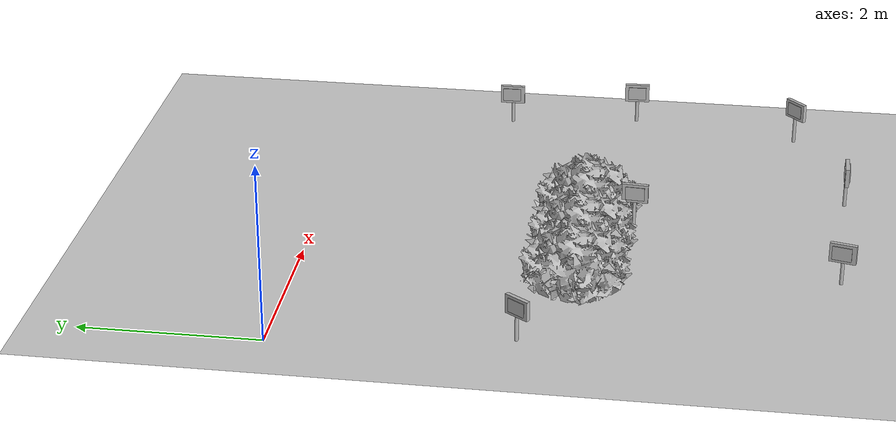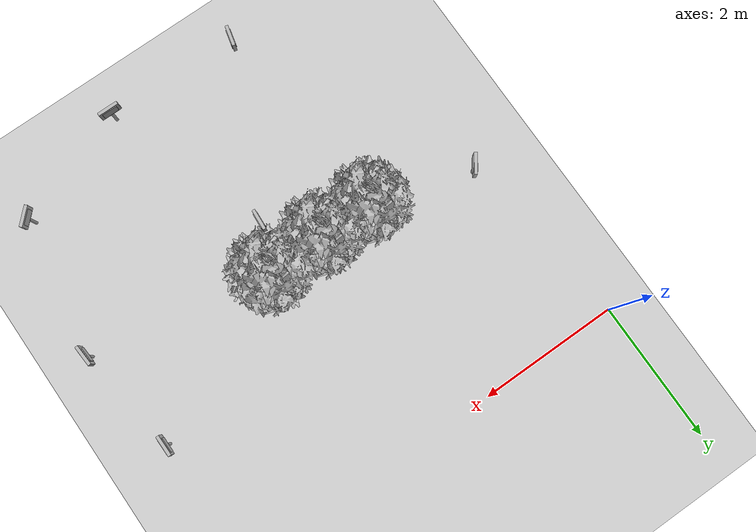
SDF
<sdf version="1.7">
 <world name="default">
  <model name="ground_plane">
   <static>1</static>
   <link name="link">
    <collision name="collision">
     <geometry><plane><normal>0 0 1</normal><size>100 100</size></plane></geometry>
     <surface><friction><ode><mu>100</mu><mu2>50</mu2></ode></friction></surface>
    </collision>
    <visual name="visual">
     <cast_shadows>0</cast_shadows>
     <geometry><plane><normal>0 0 1</normal><size>100 100</size></plane></geometry>
     <material>
      <script><uri>file://media/materials/scripts/gazebo.material</uri><name>Gazebo/Grey</name></script>
     </material>
    </visual>
   </link>
  </model>
  <model name="abbfre_7">
   <link name="link_0">
    <inertial>
     <mass>1</mass>
     <inertia>
      <ixx>0.166667</ixx>
      <ixy>0</ixy>
      <ixz>0</ixz>
      <iyy>0.166667</iyy>
      <iyz>0</iyz>
      <izz>0.166667</izz>
     </inertia>
    </inertial>
    <pose>0 0 -0 1.60917 -0 0</pose>
    <visual name="visual">
     <geometry><mesh><uri>model://abbfre/meshes/arbufres.obj</uri><scale>1 1 1</scale></mesh></geometry>
    </visual>
    <collision name="collision">
     <geometry><mesh><uri>model://abbfre/meshes/arbufres.obj</uri><scale>1 1 1</scale></mesh></geometry>
     <surface>
      <friction>
       <ode><mu>1</mu><mu2>1</mu2><fdir1>0 0 0</fdir1><slip1>0</slip1><slip2>0</slip2></ode>
       <torsional>
        <coefficient>1</coefficient>
        <patch_radius>0</patch_radius>
        <surface_radius>0</surface_radius>
        <use_patch_radius>1</use_patch_radius>
        <ode><slip>0</slip></ode>
       </torsional>
      </friction>
      <bounce><restitution_coefficient>0</restitution_coefficient><threshold>1e+06</threshold></bounce>
      <contact>
       <collide_without_contact>0</collide_without_contact>
       <collide_without_contact_bitmask>1</collide_without_contact_bitmask>
       <collide_bitmask>1</collide_bitmask>
       <ode>
        <soft_cfm>0</soft_cfm>
        <soft_erp>0.2</soft_erp>
        <kp>1e+13</kp>
        <kd>1</kd>
        <max_vel>0.01</max_vel>
        <min_depth>0</min_depth>
       </ode>
       <bullet>
        <split_impulse>1</split_impulse>
        <split_impulse_penetration_threshold>-0.01</split_impulse_penetration_threshold>
        <soft_cfm>0</soft_cfm>
        <soft_erp>0.2</soft_erp>
        <kp>1e+13</kp>
        <kd>1</kd>
       </bullet>
      </contact>
     </surface>
    </collision>
   </link>
   <static>1</static>
   <pose>2.60583 -2.92562 0 0 -0 0</pose>
  </model>
  <model name="letrero_riego_3">
   <link name="link_0">
    <inertial>
     <mass>0.0543151</mass>
     <inertia>
      <ixx>4.90351e-06</ixx>
      <ixy>0</ixy>
      <ixz>0</ixz>
      <iyy>4.90351e-06</iyy>
      <iyz>0</iyz>
      <izz>1.12837e-07</izz>
     </inertia>
    </inertial>
    <pose>0.002515 0.005109 0.153562 0 -0 0</pose>
    <visual name="visual">
     <geometry><cylinder><radius>0.0203836</radius><length>0.327243</length></cylinder></geometry>
     <material>
      <lighting>1</lighting>
      <script>
       <uri>model://letrero_riego/madera/scripts</uri>
       <uri>model://letrero_riego/madera/textures</uri>
       <name>textur/madera</name>
      </script>
      <shader type="pixel"/>
      <emissive>0 0 0 1</emissive>
     </material>
    </visual>
    <collision name="collision">
     <geometry><cylinder><radius>0.020384</radius><length>0.327243</length></cylinder></geometry>
     <surface>
      <friction>
       <ode><mu>1</mu><mu2>1</mu2><fdir1>0 0 0</fdir1><slip1>0</slip1><slip2>0</slip2></ode>
       <torsional>
        <coefficient>1</coefficient>
        <patch_radius>0</patch_radius>
        <surface_radius>0</surface_radius>
        <use_patch_radius>1</use_patch_radius>
        <ode><slip>0</slip></ode>
       </torsional>
      </friction>
      <bounce><restitution_coefficient>0</restitution_coefficient><threshold>1e+06</threshold></bounce>
      <contact>
       <collide_without_contact>0</collide_without_contact>
       <collide_without_contact_bitmask>1</collide_without_contact_bitmask>
       <collide_bitmask>1</collide_bitmask>
       <ode>
        <soft_cfm>0</soft_cfm>
        <soft_erp>0.2</soft_erp>
        <kp>1e+13</kp>
        <kd>1</kd>
        <max_vel>0.01</max_vel>
        <min_depth>0</min_depth>
       </ode>
       <bullet>
        <split_impulse>1</split_impulse>
        <split_impulse_penetration_threshold>-0.01</split_impulse_penetration_threshold>
        <soft_cfm>0</soft_cfm>
        <soft_erp>0.2</soft_erp>
        <kp>1e+13</kp>
        <kd>1</kd>
       </bullet>
      </contact>
     </surface>
    </collision>
   </link>
   <link name="link_1">
    <inertial>
     <mass>0.00299633</mass>
     <inertia>
      <ixx>1.27855e-05</ixx>
      <ixy>0</ixy>
      <ixz>0</ixz>
      <iyy>3.42923e-05</iyy>
      <iyz>0</iyz>
      <izz>2.25402e-05</izz>
     </inertia>
    </inertial>
    <pose>-0.001542 0.002452 0.422031 0 -0 0</pose>
    <visual name="visual">
     <geometry><box><size>0.296988 0.04549 0.221665</size></box></geometry>
     <material>
      <lighting>1</lighting>
      <script>
       <uri>model://letrero_riego/madera/scripts</uri>
       <uri>model://letrero_riego/madera/textures</uri>
       <name>textur/madera</name>
      </script>
      <shader type="pixel"/>
      <emissive>0 0 0 1</emissive>
     </material>
    </visual>
    <collision name="collision">
     <geometry><box><size>0.296988 0.04549 0.221665</size></box></geometry>
     <surface>
      <friction>
       <ode><mu>1</mu><mu2>1</mu2><fdir1>0 0 0</fdir1><slip1>0</slip1><slip2>0</slip2></ode>
       <torsional>
        <coefficient>1</coefficient>
        <patch_radius>0</patch_radius>
        <surface_radius>0</surface_radius>
        <use_patch_radius>1</use_patch_radius>
        <ode><slip>0</slip></ode>
       </torsional>
      </friction>
      <bounce><restitution_coefficient>0</restitution_coefficient><threshold>1e+06</threshold></bounce>
      <contact>
       <collide_without_contact>0</collide_without_contact>
       <collide_without_contact_bitmask>1</collide_without_contact_bitmask>
       <collide_bitmask>1</collide_bitmask>
       <ode>
        <soft_cfm>0</soft_cfm>
        <soft_erp>0.2</soft_erp>
        <kp>1e+13</kp>
        <kd>1</kd>
        <max_vel>0.01</max_vel>
        <min_depth>0</min_depth>
       </ode>
       <bullet>
        <split_impulse>1</split_impulse>
        <split_impulse_penetration_threshold>-0.01</split_impulse_penetration_threshold>
        <soft_cfm>0</soft_cfm>
        <soft_erp>0.2</soft_erp>
        <kp>1e+13</kp>
        <kd>1</kd>
       </bullet>
      </contact>
     </surface>
    </collision>
   </link>
   <link name="link_2">
    <inertial>
     <mass>0.00173577</mass>
     <inertia>
      <ixx>4.23206e-06</ixx>
      <ixy>0</ixy>
      <ixz>0</ixz>
      <iyy>1.03921e-05</iyy>
      <iyz>0</iyz>
      <izz>7.37287e-06</izz>
     </inertia>
    </inertial>
    <pose>-0.010225 0.002657 0.421501 0 -0 0</pose>
    <visual name="visual">
     <geometry><box><size>0.216284 0.064749 0.15832</size></box></geometry>
     <material>
      <lighting>1</lighting>
      <script>
       <uri>model://letrero_riego/materials/scripts</uri>
       <uri>model://letrero_riego/materials/textures</uri>
       <name>textur/riego</name>
      </script>
      <shader type="pixel"/>
      <emissive>0 0 0 1</emissive>
     </material>
    </visual>
    <collision name="collision">
     <geometry><box><size>0.216284 0.064749 0.15832</size></box></geometry>
     <surface>
      <friction>
       <ode><mu>1</mu><mu2>1</mu2><fdir1>0 0 0</fdir1><slip1>0</slip1><slip2>0</slip2></ode>
       <torsional>
        <coefficient>1</coefficient>
        <patch_radius>0</patch_radius>
        <surface_radius>0</surface_radius>
        <use_patch_radius>1</use_patch_radius>
        <ode><slip>0</slip></ode>
       </torsional>
      </friction>
      <bounce><restitution_coefficient>0</restitution_coefficient><threshold>1e+06</threshold></bounce>
      <contact>
       <collide_without_contact>0</collide_without_contact>
       <collide_without_contact_bitmask>1</collide_without_contact_bitmask>
       <collide_bitmask>1</collide_bitmask>
       <ode>
        <soft_cfm>0</soft_cfm>
        <soft_erp>0.2</soft_erp>
        <kp>1e+13</kp>
        <kd>1</kd>
        <max_vel>0.01</max_vel>
        <min_depth>0</min_depth>
       </ode>
       <bullet>
        <split_impulse>1</split_impulse>
        <split_impulse_penetration_threshold>-0.01</split_impulse_penetration_threshold>
        <soft_cfm>0</soft_cfm>
        <soft_erp>0.2</soft_erp>
        <kp>1e+13</kp>
        <kd>1</kd>
       </bullet>
      </contact>
     </surface>
    </collision>
   </link>
   <joint name="link_0_JOINT_1" type="fixed">
    <parent>link_0</parent>
    <child>link_1</child>
    <physics>
     <ode><limit><cfm>0</cfm><erp>0.2</erp></limit><suspension><cfm>0</cfm><erp>0.2</erp></suspension></ode>
    </physics>
   </joint>
   <joint name="link_0_JOINT_2" type="fixed">
    <parent>link_0</parent>
    <child>link_2</child>
    <physics>
     <ode><limit><cfm>0</cfm><erp>0.2</erp></limit><suspension><cfm>0</cfm><erp>0.2</erp></suspension></ode>
    </physics>
   </joint>
   <static>1</static>
   <pose>5.76133 -1.89279 -0.058362 0 0 -1.56852</pose>
  </model>
  <model name="letrero_fresa_2">
   <link name="link_0">
    <inertial>
     <mass>0.00543151</mass>
     <inertia>
      <ixx>4.90351e-06</ixx>
      <ixy>0</ixy>
      <ixz>0</ixz>
      <iyy>4.90351e-06</iyy>
      <iyz>0</iyz>
      <izz>1.12837e-07</izz>
     </inertia>
    </inertial>
    <pose>0.002372 -0.000902 -0.178803 0 -0 0</pose>
    <visual name="visual">
     <geometry><cylinder><radius>0.0203836</radius><length>0.327243</length></cylinder></geometry>
     <material>
      <lighting>1</lighting>
      <script>
       <uri>model://letrero_fresa/madera/scripts</uri>
       <uri>model://letrero_fresa/madera/textures</uri>
       <name>textur/madera</name>
      </script>
      <shader type="pixel"/>
      <emissive>0 0 0 1</emissive>
     </material>
    </visual>
    <collision name="collision">
     <geometry><cylinder><radius>0.020384</radius><length>0.327243</length></cylinder></geometry>
     <surface>
      <friction>
       <ode><mu>1</mu><mu2>1</mu2><fdir1>0 0 0</fdir1><slip1>0</slip1><slip2>0</slip2></ode>
       <torsional>
        <coefficient>1</coefficient>
        <patch_radius>0</patch_radius>
        <surface_radius>0</surface_radius>
        <use_patch_radius>1</use_patch_radius>
        <ode><slip>0</slip></ode>
       </torsional>
      </friction>
      <bounce><restitution_coefficient>0</restitution_coefficient><threshold>1e+06</threshold></bounce>
      <contact>
       <collide_without_contact>0</collide_without_contact>
       <collide_without_contact_bitmask>1</collide_without_contact_bitmask>
       <collide_bitmask>1</collide_bitmask>
       <ode>
        <soft_cfm>0</soft_cfm>
        <soft_erp>0.2</soft_erp>
        <kp>1e+13</kp>
        <kd>1</kd>
        <max_vel>0.01</max_vel>
        <min_depth>0</min_depth>
       </ode>
       <bullet>
        <split_impulse>1</split_impulse>
        <split_impulse_penetration_threshold>-0.01</split_impulse_penetration_threshold>
        <soft_cfm>0</soft_cfm>
        <soft_erp>0.2</soft_erp>
        <kp>1e+13</kp>
        <kd>1</kd>
       </bullet>
      </contact>
     </surface>
    </collision>
   </link>
   <link name="link_1">
    <inertial>
     <mass>0.00299633</mass>
     <inertia>
      <ixx>1.27855e-05</ixx>
      <ixy>0</ixy>
      <ixz>0</ixz>
      <iyy>3.42923e-05</iyy>
      <iyz>0</iyz>
      <izz>2.25402e-05</izz>
     </inertia>
    </inertial>
    <pose>-0.001685 -0.003559 0.089666 0 -0 0</pose>
    <visual name="visual">
     <geometry><box><size>0.296988 0.04549 0.221665</size></box></geometry>
     <material>
      <lighting>1</lighting>
      <script>
       <uri>model://letrero_fresa/madera/scripts</uri>
       <uri>model://letrero_fresa/madera/textures</uri>
       <name>textur/madera</name>
      </script>
      <shader type="pixel"/>
      <emissive>0 0 0 1</emissive>
     </material>
    </visual>
    <collision name="collision">
     <geometry><box><size>0.296988 0.04549 0.221665</size></box></geometry>
     <surface>
      <friction>
       <ode><mu>1</mu><mu2>1</mu2><fdir1>0 0 0</fdir1><slip1>0</slip1><slip2>0</slip2></ode>
       <torsional>
        <coefficient>1</coefficient>
        <patch_radius>0</patch_radius>
        <surface_radius>0</surface_radius>
        <use_patch_radius>1</use_patch_radius>
        <ode><slip>0</slip></ode>
       </torsional>
      </friction>
      <bounce><restitution_coefficient>0</restitution_coefficient><threshold>1e+06</threshold></bounce>
      <contact>
       <collide_without_contact>0</collide_without_contact>
       <collide_without_contact_bitmask>1</collide_without_contact_bitmask>
       <collide_bitmask>1</collide_bitmask>
       <ode>
        <soft_cfm>0</soft_cfm>
        <soft_erp>0.2</soft_erp>
        <kp>1e+13</kp>
        <kd>1</kd>
        <max_vel>0.01</max_vel>
        <min_depth>0</min_depth>
       </ode>
       <bullet>
        <split_impulse>1</split_impulse>
        <split_impulse_penetration_threshold>-0.01</split_impulse_penetration_threshold>
        <soft_cfm>0</soft_cfm>
        <soft_erp>0.2</soft_erp>
        <kp>1e+13</kp>
        <kd>1</kd>
       </bullet>
      </contact>
     </surface>
    </collision>
   </link>
   <link name="link_2">
    <inertial>
     <mass>0.00219695</mass>
     <inertia>
      <ixx>5.34209e-06</ixx>
      <ixy>0</ixy>
      <ixz>0</ixz>
      <iyy>1.31531e-05</iyy>
      <iyz>0</iyz>
      <izz>9.31738e-06</izz>
     </inertia>
    </inertial>
    <pose>-0.001275 -0.005928 0.089136 0 -0 0</pose>
    <visual name="visual">
     <geometry><box><size>0.216284 0.06414 0.15832</size></box></geometry>
     <material>
      <lighting>1</lighting>
      <script>
       <uri>model://letrero_fresa/materials/scripts</uri>
       <uri>model://letrero_fresa/materials/textures</uri>
       <name>textur/difre</name>
      </script>
      <shader type="pixel"/>
      <emissive>0 0 0 1</emissive>
     </material>
    </visual>
    <collision name="collision">
     <geometry><box><size>0.216284 0.06414 0.15832</size></box></geometry>
     <surface>
      <friction>
       <ode><mu>1</mu><mu2>1</mu2><fdir1>0 0 0</fdir1><slip1>0</slip1><slip2>0</slip2></ode>
       <torsional>
        <coefficient>1</coefficient>
        <patch_radius>0</patch_radius>
        <surface_radius>0</surface_radius>
        <use_patch_radius>1</use_patch_radius>
        <ode><slip>0</slip></ode>
       </torsional>
      </friction>
      <bounce><restitution_coefficient>0</restitution_coefficient><threshold>1e+06</threshold></bounce>
      <contact>
       <collide_without_contact>0</collide_without_contact>
       <collide_without_contact_bitmask>1</collide_without_contact_bitmask>
       <collide_bitmask>1</collide_bitmask>
       <ode>
        <soft_cfm>0</soft_cfm>
        <soft_erp>0.2</soft_erp>
        <kp>1e+13</kp>
        <kd>1</kd>
        <max_vel>0.01</max_vel>
        <min_depth>0</min_depth>
       </ode>
       <bullet>
        <split_impulse>1</split_impulse>
        <split_impulse_penetration_threshold>-0.01</split_impulse_penetration_threshold>
        <soft_cfm>0</soft_cfm>
        <soft_erp>0.2</soft_erp>
        <kp>1e+13</kp>
        <kd>1</kd>
       </bullet>
      </contact>
     </surface>
    </collision>
   </link>
   <joint name="link_0_JOINT_1" type="fixed">
    <parent>link_0</parent>
    <child>link_1</child>
    <physics>
     <ode><limit><cfm>0</cfm><erp>0.2</erp></limit><suspension><cfm>0</cfm><erp>0.2</erp></suspension></ode>
    </physics>
   </joint>
   <joint name="link_0_JOINT_2" type="fixed">
    <parent>link_0</parent>
    <child>link_2</child>
    <physics>
     <ode><limit><cfm>0</cfm><erp>0.2</erp></limit><suspension><cfm>0</cfm><erp>0.2</erp></suspension></ode>
    </physics>
   </joint>
   <static>1</static>
   <pose>0.385893 -2.58053 0.298494 0 -0 0.962448</pose>
  </model>
  <model name="letrero_fresa_8">
   <link name="link_0">
    <inertial>
     <mass>0.00543151</mass>
     <inertia>
      <ixx>4.90351e-06</ixx>
      <ixy>0</ixy>
      <ixz>0</ixz>
      <iyy>4.90351e-06</iyy>
      <iyz>0</iyz>
      <izz>1.12837e-07</izz>
     </inertia>
    </inertial>
    <pose>0.002372 -0.000902 -0.178803 0 -0 0</pose>
    <visual name="visual">
     <geometry><cylinder><radius>0.0203836</radius><length>0.327243</length></cylinder></geometry>
     <material>
      <lighting>1</lighting>
      <script>
       <uri>model://letrero_fresa/madera/scripts</uri>
       <uri>model://letrero_fresa/madera/textures</uri>
       <name>textur/madera</name>
      </script>
      <shader type="pixel"/>
      <emissive>0 0 0 1</emissive>
     </material>
    </visual>
    <collision name="collision">
     <geometry><cylinder><radius>0.020384</radius><length>0.327243</length></cylinder></geometry>
     <surface>
      <friction>
       <ode><mu>1</mu><mu2>1</mu2><fdir1>0 0 0</fdir1><slip1>0</slip1><slip2>0</slip2></ode>
       <torsional>
        <coefficient>1</coefficient>
        <patch_radius>0</patch_radius>
        <surface_radius>0</surface_radius>
        <use_patch_radius>1</use_patch_radius>
        <ode><slip>0</slip></ode>
       </torsional>
      </friction>
      <bounce><restitution_coefficient>0</restitution_coefficient><threshold>1e+06</threshold></bounce>
      <contact>
       <collide_without_contact>0</collide_without_contact>
       <collide_without_contact_bitmask>1</collide_without_contact_bitmask>
       <collide_bitmask>1</collide_bitmask>
       <ode>
        <soft_cfm>0</soft_cfm>
        <soft_erp>0.2</soft_erp>
        <kp>1e+13</kp>
        <kd>1</kd>
        <max_vel>0.01</max_vel>
        <min_depth>0</min_depth>
       </ode>
       <bullet>
        <split_impulse>1</split_impulse>
        <split_impulse_penetration_threshold>-0.01</split_impulse_penetration_threshold>
        <soft_cfm>0</soft_cfm>
        <soft_erp>0.2</soft_erp>
        <kp>1e+13</kp>
        <kd>1</kd>
       </bullet>
      </contact>
     </surface>
    </collision>
   </link>
   <link name="link_1">
    <inertial>
     <mass>0.00299633</mass>
     <inertia>
      <ixx>1.27855e-05</ixx>
      <ixy>0</ixy>
      <ixz>0</ixz>
      <iyy>3.42923e-05</iyy>
      <iyz>0</iyz>
      <izz>2.25402e-05</izz>
     </inertia>
    </inertial>
    <pose>-0.001685 -0.003559 0.089666 0 -0 0</pose>
    <visual name="visual">
     <geometry><box><size>0.296988 0.04549 0.221665</size></box></geometry>
     <material>
      <lighting>1</lighting>
      <script>
       <uri>model://letrero_fresa/madera/scripts</uri>
       <uri>model://letrero_fresa/madera/textures</uri>
       <name>textur/madera</name>
      </script>
      <shader type="pixel"/>
      <emissive>0 0 0 1</emissive>
     </material>
    </visual>
    <collision name="collision">
     <geometry><box><size>0.296988 0.04549 0.221665</size></box></geometry>
     <surface>
      <friction>
       <ode><mu>1</mu><mu2>1</mu2><fdir1>0 0 0</fdir1><slip1>0</slip1><slip2>0</slip2></ode>
       <torsional>
        <coefficient>1</coefficient>
        <patch_radius>0</patch_radius>
        <surface_radius>0</surface_radius>
        <use_patch_radius>1</use_patch_radius>
        <ode><slip>0</slip></ode>
       </torsional>
      </friction>
      <bounce><restitution_coefficient>0</restitution_coefficient><threshold>1e+06</threshold></bounce>
      <contact>
       <collide_without_contact>0</collide_without_contact>
       <collide_without_contact_bitmask>1</collide_without_contact_bitmask>
       <collide_bitmask>1</collide_bitmask>
       <ode>
        <soft_cfm>0</soft_cfm>
        <soft_erp>0.2</soft_erp>
        <kp>1e+13</kp>
        <kd>1</kd>
        <max_vel>0.01</max_vel>
        <min_depth>0</min_depth>
       </ode>
       <bullet>
        <split_impulse>1</split_impulse>
        <split_impulse_penetration_threshold>-0.01</split_impulse_penetration_threshold>
        <soft_cfm>0</soft_cfm>
        <soft_erp>0.2</soft_erp>
        <kp>1e+13</kp>
        <kd>1</kd>
       </bullet>
      </contact>
     </surface>
    </collision>
   </link>
   <link name="link_2">
    <inertial>
     <mass>0.00219695</mass>
     <inertia>
      <ixx>5.34209e-06</ixx>
      <ixy>0</ixy>
      <ixz>0</ixz>
      <iyy>1.31531e-05</iyy>
      <iyz>0</iyz>
      <izz>9.31738e-06</izz>
     </inertia>
    </inertial>
    <pose>-0.001275 -0.005928 0.089136 0 -0 0</pose>
    <visual name="visual">
     <geometry><box><size>0.216284 0.06414 0.15832</size></box></geometry>
     <material>
      <lighting>1</lighting>
      <script>
       <uri>model://letrero_fresa/materials/scripts</uri>
       <uri>model://letrero_fresa/materials/textures</uri>
       <name>textur/difre</name>
      </script>
      <shader type="pixel"/>
      <emissive>0 0 0 1</emissive>
     </material>
    </visual>
    <collision name="collision">
     <geometry><box><size>0.216284 0.06414 0.15832</size></box></geometry>
     <surface>
      <friction>
       <ode><mu>1</mu><mu2>1</mu2><fdir1>0 0 0</fdir1><slip1>0</slip1><slip2>0</slip2></ode>
       <torsional>
        <coefficient>1</coefficient>
        <patch_radius>0</patch_radius>
        <surface_radius>0</surface_radius>
        <use_patch_radius>1</use_patch_radius>
        <ode><slip>0</slip></ode>
       </torsional>
      </friction>
      <bounce><restitution_coefficient>0</restitution_coefficient><threshold>1e+06</threshold></bounce>
      <contact>
       <collide_without_contact>0</collide_without_contact>
       <collide_without_contact_bitmask>1</collide_without_contact_bitmask>
       <collide_bitmask>1</collide_bitmask>
       <ode>
        <soft_cfm>0</soft_cfm>
        <soft_erp>0.2</soft_erp>
        <kp>1e+13</kp>
        <kd>1</kd>
        <max_vel>0.01</max_vel>
        <min_depth>0</min_depth>
       </ode>
       <bullet>
        <split_impulse>1</split_impulse>
        <split_impulse_penetration_threshold>-0.01</split_impulse_penetration_threshold>
        <soft_cfm>0</soft_cfm>
        <soft_erp>0.2</soft_erp>
        <kp>1e+13</kp>
        <kd>1</kd>
       </bullet>
      </contact>
     </surface>
    </collision>
   </link>
   <joint name="link_0_JOINT_1" type="fixed">
    <parent>link_0</parent>
    <child>link_1</child>
    <physics>
     <ode><limit><cfm>0</cfm><erp>0.2</erp></limit><suspension><cfm>0</cfm><erp>0.2</erp></suspension></ode>
    </physics>
   </joint>
   <joint name="link_0_JOINT_2" type="fixed">
    <parent>link_0</parent>
    <child>link_2</child>
    <physics>
     <ode><limit><cfm>0</cfm><erp>0.2</erp></limit><suspension><cfm>0</cfm><erp>0.2</erp></suspension></ode>
    </physics>
   </joint>
   <static>1</static>
   <pose>3.14817 -3.5974 0.304094 0 -0 1.50107</pose>
  </model>
  <model name="letrero_riego_10">
   <link name="link_0">
    <inertial>
     <mass>0.0543151</mass>
     <inertia>
      <ixx>4.90351e-06</ixx>
      <ixy>0</ixy>
      <ixz>0</ixz>
      <iyy>4.90351e-06</iyy>
      <iyz>0</iyz>
      <izz>1.12837e-07</izz>
     </inertia>
    </inertial>
    <pose>0.002515 0.005109 0.153562 0 -0 0</pose>
    <visual name="visual">
     <geometry><cylinder><radius>0.0203836</radius><length>0.327243</length></cylinder></geometry>
     <material>
      <lighting>1</lighting>
      <script>
       <uri>model://letrero_riego/madera/scripts</uri>
       <uri>model://letrero_riego/madera/textures</uri>
       <name>textur/madera</name>
      </script>
      <shader type="pixel"/>
      <emissive>0 0 0 1</emissive>
     </material>
    </visual>
    <collision name="collision">
     <geometry><cylinder><radius>0.020384</radius><length>0.327243</length></cylinder></geometry>
     <surface>
      <friction>
       <ode><mu>1</mu><mu2>1</mu2><fdir1>0 0 0</fdir1><slip1>0</slip1><slip2>0</slip2></ode>
       <torsional>
        <coefficient>1</coefficient>
        <patch_radius>0</patch_radius>
        <surface_radius>0</surface_radius>
        <use_patch_radius>1</use_patch_radius>
        <ode><slip>0</slip></ode>
       </torsional>
      </friction>
      <bounce><restitution_coefficient>0</restitution_coefficient><threshold>1e+06</threshold></bounce>
      <contact>
       <collide_without_contact>0</collide_without_contact>
       <collide_without_contact_bitmask>1</collide_without_contact_bitmask>
       <collide_bitmask>1</collide_bitmask>
       <ode>
        <soft_cfm>0</soft_cfm>
        <soft_erp>0.2</soft_erp>
        <kp>1e+13</kp>
        <kd>1</kd>
        <max_vel>0.01</max_vel>
        <min_depth>0</min_depth>
       </ode>
       <bullet>
        <split_impulse>1</split_impulse>
        <split_impulse_penetration_threshold>-0.01</split_impulse_penetration_threshold>
        <soft_cfm>0</soft_cfm>
        <soft_erp>0.2</soft_erp>
        <kp>1e+13</kp>
        <kd>1</kd>
       </bullet>
      </contact>
     </surface>
    </collision>
   </link>
   <link name="link_1">
    <inertial>
     <mass>0.00299633</mass>
     <inertia>
      <ixx>1.27855e-05</ixx>
      <ixy>0</ixy>
      <ixz>0</ixz>
      <iyy>3.42923e-05</iyy>
      <iyz>0</iyz>
      <izz>2.25402e-05</izz>
     </inertia>
    </inertial>
    <pose>-0.001542 0.002452 0.422031 0 -0 0</pose>
    <visual name="visual">
     <geometry><box><size>0.296988 0.04549 0.221665</size></box></geometry>
     <material>
      <lighting>1</lighting>
      <script>
       <uri>model://letrero_riego/madera/scripts</uri>
       <uri>model://letrero_riego/madera/textures</uri>
       <name>textur/madera</name>
      </script>
      <shader type="pixel"/>
      <emissive>0 0 0 1</emissive>
     </material>
    </visual>
    <collision name="collision">
     <geometry><box><size>0.296988 0.04549 0.221665</size></box></geometry>
     <surface>
      <friction>
       <ode><mu>1</mu><mu2>1</mu2><fdir1>0 0 0</fdir1><slip1>0</slip1><slip2>0</slip2></ode>
       <torsional>
        <coefficient>1</coefficient>
        <patch_radius>0</patch_radius>
        <surface_radius>0</surface_radius>
        <use_patch_radius>1</use_patch_radius>
        <ode><slip>0</slip></ode>
       </torsional>
      </friction>
      <bounce><restitution_coefficient>0</restitution_coefficient><threshold>1e+06</threshold></bounce>
      <contact>
       <collide_without_contact>0</collide_without_contact>
       <collide_without_contact_bitmask>1</collide_without_contact_bitmask>
       <collide_bitmask>1</collide_bitmask>
       <ode>
        <soft_cfm>0</soft_cfm>
        <soft_erp>0.2</soft_erp>
        <kp>1e+13</kp>
        <kd>1</kd>
        <max_vel>0.01</max_vel>
        <min_depth>0</min_depth>
       </ode>
       <bullet>
        <split_impulse>1</split_impulse>
        <split_impulse_penetration_threshold>-0.01</split_impulse_penetration_threshold>
        <soft_cfm>0</soft_cfm>
        <soft_erp>0.2</soft_erp>
        <kp>1e+13</kp>
        <kd>1</kd>
       </bullet>
      </contact>
     </surface>
    </collision>
   </link>
   <link name="link_2">
    <inertial>
     <mass>0.00173577</mass>
     <inertia>
      <ixx>4.23206e-06</ixx>
      <ixy>0</ixy>
      <ixz>0</ixz>
      <iyy>1.03921e-05</iyy>
      <iyz>0</iyz>
      <izz>7.37287e-06</izz>
     </inertia>
    </inertial>
    <pose>-0.010225 0.002657 0.421501 0 -0 0</pose>
    <visual name="visual">
     <geometry><box><size>0.216284 0.064749 0.15832</size></box></geometry>
     <material>
      <lighting>1</lighting>
      <script>
       <uri>model://letrero_riego/materials/scripts</uri>
       <uri>model://letrero_riego/materials/textures</uri>
       <name>textur/riego</name>
      </script>
      <shader type="pixel"/>
      <emissive>0 0 0 1</emissive>
     </material>
    </visual>
    <collision name="collision">
     <geometry><box><size>0.216284 0.064749 0.15832</size></box></geometry>
     <surface>
      <friction>
       <ode><mu>1</mu><mu2>1</mu2><fdir1>0 0 0</fdir1><slip1>0</slip1><slip2>0</slip2></ode>
       <torsional>
        <coefficient>1</coefficient>
        <patch_radius>0</patch_radius>
        <surface_radius>0</surface_radius>
        <use_patch_radius>1</use_patch_radius>
        <ode><slip>0</slip></ode>
       </torsional>
      </friction>
      <bounce><restitution_coefficient>0</restitution_coefficient><threshold>1e+06</threshold></bounce>
      <contact>
       <collide_without_contact>0</collide_without_contact>
       <collide_without_contact_bitmask>1</collide_without_contact_bitmask>
       <collide_bitmask>1</collide_bitmask>
       <ode>
        <soft_cfm>0</soft_cfm>
        <soft_erp>0.2</soft_erp>
        <kp>1e+13</kp>
        <kd>1</kd>
        <max_vel>0.01</max_vel>
        <min_depth>0</min_depth>
       </ode>
       <bullet>
        <split_impulse>1</split_impulse>
        <split_impulse_penetration_threshold>-0.01</split_impulse_penetration_threshold>
        <soft_cfm>0</soft_cfm>
        <soft_erp>0.2</soft_erp>
        <kp>1e+13</kp>
        <kd>1</kd>
       </bullet>
      </contact>
     </surface>
    </collision>
   </link>
   <joint name="link_0_JOINT_1" type="fixed">
    <parent>link_0</parent>
    <child>link_1</child>
    <physics>
     <ode><limit><cfm>0</cfm><erp>0.2</erp></limit><suspension><cfm>0</cfm><erp>0.2</erp></suspension></ode>
    </physics>
   </joint>
   <joint name="link_0_JOINT_2" type="fixed">
    <parent>link_0</parent>
    <child>link_2</child>
    <physics>
     <ode><limit><cfm>0</cfm><erp>0.2</erp></limit><suspension><cfm>0</cfm><erp>0.2</erp></suspension></ode>
    </physics>
   </joint>
   <static>1</static>
   <pose>2.05846 -5.91141 -0.048936 0 0 -1.8093</pose>
  </model>
  <model name="letrero_insecto_4">
   <link name="link_0">
    <inertial>
     <mass>0.00543151</mass>
     <inertia>
      <ixx>4.90351e-06</ixx>
      <ixy>0</ixy>
      <ixz>0</ixz>
      <iyy>4.90351e-06</iyy>
      <iyz>0</iyz>
      <izz>1.12837e-07</izz>
     </inertia>
    </inertial>
    <pose>0.002372 -0.000902 -0.178803 0 -0 0</pose>
    <visual name="visual">
     <geometry><cylinder><radius>0.0203836</radius><length>0.327243</length></cylinder></geometry>
     <material>
      <lighting>1</lighting>
      <script>
       <uri>model://letrero_insecto/madera/scripts</uri>
       <uri>model://letrero_insecto/madera/textures</uri>
       <name>textur/madera</name>
      </script>
      <shader type="pixel"/>
      <emissive>0 0 0 1</emissive>
     </material>
    </visual>
    <collision name="collision">
     <geometry><cylinder><radius>0.020384</radius><length>0.327243</length></cylinder></geometry>
     <surface>
      <friction>
       <ode><mu>1</mu><mu2>1</mu2><fdir1>0 0 0</fdir1><slip1>0</slip1><slip2>0</slip2></ode>
       <torsional>
        <coefficient>1</coefficient>
        <patch_radius>0</patch_radius>
        <surface_radius>0</surface_radius>
        <use_patch_radius>1</use_patch_radius>
        <ode><slip>0</slip></ode>
       </torsional>
      </friction>
      <bounce><restitution_coefficient>0</restitution_coefficient><threshold>1e+06</threshold></bounce>
      <contact>
       <collide_without_contact>0</collide_without_contact>
       <collide_without_contact_bitmask>1</collide_without_contact_bitmask>
       <collide_bitmask>1</collide_bitmask>
       <ode>
        <soft_cfm>0</soft_cfm>
        <soft_erp>0.2</soft_erp>
        <kp>1e+13</kp>
        <kd>1</kd>
        <max_vel>0.01</max_vel>
        <min_depth>0</min_depth>
       </ode>
       <bullet>
        <split_impulse>1</split_impulse>
        <split_impulse_penetration_threshold>-0.01</split_impulse_penetration_threshold>
        <soft_cfm>0</soft_cfm>
        <soft_erp>0.2</soft_erp>
        <kp>1e+13</kp>
        <kd>1</kd>
       </bullet>
      </contact>
     </surface>
    </collision>
   </link>
   <link name="link_1">
    <inertial>
     <mass>0.00299633</mass>
     <inertia>
      <ixx>1.27855e-05</ixx>
      <ixy>0</ixy>
      <ixz>0</ixz>
      <iyy>3.42923e-05</iyy>
      <iyz>0</iyz>
      <izz>2.25402e-05</izz>
     </inertia>
    </inertial>
    <pose>-0.001685 -0.003559 0.089666 0 -0 0</pose>
    <visual name="visual">
     <geometry><box><size>0.296988 0.04549 0.221665</size></box></geometry>
     <material>
      <lighting>1</lighting>
      <script>
       <uri>model://letrero_insecto/madera/scripts</uri>
       <uri>model://letrero_insecto/madera/textures</uri>
       <name>textur/madera</name>
      </script>
      <shader type="pixel"/>
      <emissive>0 0 0 1</emissive>
     </material>
    </visual>
    <collision name="collision">
     <geometry><box><size>0.296988 0.04549 0.221665</size></box></geometry>
     <surface>
      <friction>
       <ode><mu>1</mu><mu2>1</mu2><fdir1>0 0 0</fdir1><slip1>0</slip1><slip2>0</slip2></ode>
       <torsional>
        <coefficient>1</coefficient>
        <patch_radius>0</patch_radius>
        <surface_radius>0</surface_radius>
        <use_patch_radius>1</use_patch_radius>
        <ode><slip>0</slip></ode>
       </torsional>
      </friction>
      <bounce><restitution_coefficient>0</restitution_coefficient><threshold>1e+06</threshold></bounce>
      <contact>
       <collide_without_contact>0</collide_without_contact>
       <collide_without_contact_bitmask>1</collide_without_contact_bitmask>
       <collide_bitmask>1</collide_bitmask>
       <ode>
        <soft_cfm>0</soft_cfm>
        <soft_erp>0.2</soft_erp>
        <kp>1e+13</kp>
        <kd>1</kd>
        <max_vel>0.01</max_vel>
        <min_depth>0</min_depth>
       </ode>
       <bullet>
        <split_impulse>1</split_impulse>
        <split_impulse_penetration_threshold>-0.01</split_impulse_penetration_threshold>
        <soft_cfm>0</soft_cfm>
        <soft_erp>0.2</soft_erp>
        <kp>1e+13</kp>
        <kd>1</kd>
       </bullet>
      </contact>
     </surface>
    </collision>
   </link>
   <link name="link_2">
    <inertial>
     <mass>0.00219695</mass>
     <inertia>
      <ixx>5.34209e-06</ixx>
      <ixy>0</ixy>
      <ixz>0</ixz>
      <iyy>1.31531e-05</iyy>
      <iyz>0</iyz>
      <izz>9.31738e-06</izz>
     </inertia>
    </inertial>
    <pose>-0.001275 -0.005928 0.089136 0 -0 0</pose>
    <visual name="visual">
     <geometry><box><size>0.216284 0.06414 0.15832</size></box></geometry>
     <material>
      <lighting>1</lighting>
      <script>
       <uri>model://letrero_insecto/materials/scripts</uri>
       <uri>model://letrero_insecto/materials/textures</uri>
       <name>textur/insec</name>
      </script>
      <shader type="pixel"/>
      <emissive>0 0 0 1</emissive>
     </material>
    </visual>
    <collision name="collision">
     <geometry><box><size>0.216284 0.06414 0.15832</size></box></geometry>
     <surface>
      <friction>
       <ode><mu>1</mu><mu2>1</mu2><fdir1>0 0 0</fdir1><slip1>0</slip1><slip2>0</slip2></ode>
       <torsional>
        <coefficient>1</coefficient>
        <patch_radius>0</patch_radius>
        <surface_radius>0</surface_radius>
        <use_patch_radius>1</use_patch_radius>
        <ode><slip>0</slip></ode>
       </torsional>
      </friction>
      <bounce><restitution_coefficient>0</restitution_coefficient><threshold>1e+06</threshold></bounce>
      <contact>
       <collide_without_contact>0</collide_without_contact>
       <collide_without_contact_bitmask>1</collide_without_contact_bitmask>
       <collide_bitmask>1</collide_bitmask>
       <ode>
        <soft_cfm>0</soft_cfm>
        <soft_erp>0.2</soft_erp>
        <kp>1e+13</kp>
        <kd>1</kd>
        <max_vel>0.01</max_vel>
        <min_depth>0</min_depth>
       </ode>
       <bullet>
        <split_impulse>1</split_impulse>
        <split_impulse_penetration_threshold>-0.01</split_impulse_penetration_threshold>
        <soft_cfm>0</soft_cfm>
        <soft_erp>0.2</soft_erp>
        <kp>1e+13</kp>
        <kd>1</kd>
       </bullet>
      </contact>
     </surface>
    </collision>
   </link>
   <joint name="link_0_JOINT_1" type="fixed">
    <parent>link_0</parent>
    <child>link_1</child>
    <physics>
     <ode><limit><cfm>0</cfm><erp>0.2</erp></limit><suspension><cfm>0</cfm><erp>0.2</erp></suspension></ode>
    </physics>
   </joint>
   <joint name="link_0_JOINT_2" type="fixed">
    <parent>link_0</parent>
    <child>link_2</child>
    <physics>
     <ode><limit><cfm>0</cfm><erp>0.2</erp></limit><suspension><cfm>0</cfm><erp>0.2</erp></suspension></ode>
    </physics>
   </joint>
   <static>1</static>
   <pose>3.96102 -5.98023 0.324135 0 -0 0</pose>
  </model>
  <model name="letrero_cheems">
   <link name="link_0">
    <inertial>
     <mass>0.00543151</mass>
     <inertia>
      <ixx>4.90351e-06</ixx>
      <ixy>0</ixy>
      <ixz>0</ixz>
      <iyy>4.90351e-06</iyy>
      <iyz>0</iyz>
      <izz>1.12837e-07</izz>
     </inertia>
    </inertial>
    <pose>0.002372 -0.000902 -0.178803 0 -0 0</pose>
    <visual name="visual">
     <geometry><cylinder><radius>0.0203836</radius><length>0.327243</length></cylinder></geometry>
     <material>
      <lighting>1</lighting>
      <script>
       <uri>model://letrero_cheems/madera/scripts</uri>
       <uri>model://letrero_cheems/madera/textures</uri>
       <name>textur/madera</name>
      </script>
      <shader type="pixel"/>
      <emissive>0 0 0 1</emissive>
     </material>
    </visual>
    <collision name="collision">
     <geometry><cylinder><radius>0.020384</radius><length>0.327243</length></cylinder></geometry>
     <surface>
      <friction>
       <ode><mu>1</mu><mu2>1</mu2><fdir1>0 0 0</fdir1><slip1>0</slip1><slip2>0</slip2></ode>
       <torsional>
        <coefficient>1</coefficient>
        <patch_radius>0</patch_radius>
        <surface_radius>0</surface_radius>
        <use_patch_radius>1</use_patch_radius>
        <ode><slip>0</slip></ode>
       </torsional>
      </friction>
      <bounce><restitution_coefficient>0</restitution_coefficient><threshold>1e+06</threshold></bounce>
      <contact>
       <collide_without_contact>0</collide_without_contact>
       <collide_without_contact_bitmask>1</collide_without_contact_bitmask>
       <collide_bitmask>1</collide_bitmask>
       <ode>
        <soft_cfm>0</soft_cfm>
        <soft_erp>0.2</soft_erp>
        <kp>1e+13</kp>
        <kd>1</kd>
        <max_vel>0.01</max_vel>
        <min_depth>0</min_depth>
       </ode>
       <bullet>
        <split_impulse>1</split_impulse>
        <split_impulse_penetration_threshold>-0.01</split_impulse_penetration_threshold>
        <soft_cfm>0</soft_cfm>
        <soft_erp>0.2</soft_erp>
        <kp>1e+13</kp>
        <kd>1</kd>
       </bullet>
      </contact>
     </surface>
    </collision>
   </link>
   <link name="link_1">
    <inertial>
     <mass>0.00299633</mass>
     <inertia>
      <ixx>1.27855e-05</ixx>
      <ixy>0</ixy>
      <ixz>0</ixz>
      <iyy>3.42923e-05</iyy>
      <iyz>0</iyz>
      <izz>2.25402e-05</izz>
     </inertia>
    </inertial>
    <pose>-0.001685 -0.003559 0.089666 0 -0 0</pose>
    <visual name="visual">
     <geometry><box><size>0.296988 0.04549 0.221665</size></box></geometry>
     <material>
      <lighting>1</lighting>
      <script>
       <uri>model://letrero_cheems/madera/scripts</uri>
       <uri>model://letrero_cheems/madera/textures</uri>
       <name>textur/madera</name>
      </script>
      <shader type="pixel"/>
      <emissive>0 0 0 1</emissive>
     </material>
    </visual>
    <collision name="collision">
     <geometry><box><size>0.296988 0.04549 0.221665</size></box></geometry>
     <surface>
      <friction>
       <ode><mu>1</mu><mu2>1</mu2><fdir1>0 0 0</fdir1><slip1>0</slip1><slip2>0</slip2></ode>
       <torsional>
        <coefficient>1</coefficient>
        <patch_radius>0</patch_radius>
        <surface_radius>0</surface_radius>
        <use_patch_radius>1</use_patch_radius>
        <ode><slip>0</slip></ode>
       </torsional>
      </friction>
      <bounce><restitution_coefficient>0</restitution_coefficient><threshold>1e+06</threshold></bounce>
      <contact>
       <collide_without_contact>0</collide_without_contact>
       <collide_without_contact_bitmask>1</collide_without_contact_bitmask>
       <collide_bitmask>1</collide_bitmask>
       <ode>
        <soft_cfm>0</soft_cfm>
        <soft_erp>0.2</soft_erp>
        <kp>1e+13</kp>
        <kd>1</kd>
        <max_vel>0.01</max_vel>
        <min_depth>0</min_depth>
       </ode>
       <bullet>
        <split_impulse>1</split_impulse>
        <split_impulse_penetration_threshold>-0.01</split_impulse_penetration_threshold>
        <soft_cfm>0</soft_cfm>
        <soft_erp>0.2</soft_erp>
        <kp>1e+13</kp>
        <kd>1</kd>
       </bullet>
      </contact>
     </surface>
    </collision>
   </link>
   <link name="link_2">
    <inertial>
     <mass>0.00219695</mass>
     <inertia>
      <ixx>5.34209e-06</ixx>
      <ixy>0</ixy>
      <ixz>0</ixz>
      <iyy>1.31531e-05</iyy>
      <iyz>0</iyz>
      <izz>9.31738e-06</izz>
     </inertia>
    </inertial>
    <pose>-0.001275 -0.005928 0.089136 0 -0 0</pose>
    <visual name="visual">
     <geometry><box><size>0.216284 0.06414 0.15832</size></box></geometry>
     <material>
      <lighting>1</lighting>
      <script>
       <uri>model://letrero_cheems/materials/scripts</uri>
       <uri>model://letrero_cheems/materials/textures</uri>
       <name>textur/cheems</name>
      </script>
      <shader type="pixel"/>
      <emissive>0 0 0 1</emissive>
     </material>
    </visual>
    <collision name="collision">
     <geometry><box><size>0.216284 0.06414 0.15832</size></box></geometry>
     <surface>
      <friction>
       <ode><mu>1</mu><mu2>1</mu2><fdir1>0 0 0</fdir1><slip1>0</slip1><slip2>0</slip2></ode>
       <torsional>
        <coefficient>1</coefficient>
        <patch_radius>0</patch_radius>
        <surface_radius>0</surface_radius>
        <use_patch_radius>1</use_patch_radius>
        <ode><slip>0</slip></ode>
       </torsional>
      </friction>
      <bounce><restitution_coefficient>0</restitution_coefficient><threshold>1e+06</threshold></bounce>
      <contact>
       <collide_without_contact>0</collide_without_contact>
       <collide_without_contact_bitmask>1</collide_without_contact_bitmask>
       <collide_bitmask>1</collide_bitmask>
       <ode>
        <soft_cfm>0</soft_cfm>
        <soft_erp>0.2</soft_erp>
        <kp>1e+13</kp>
        <kd>1</kd>
        <max_vel>0.01</max_vel>
        <min_depth>0</min_depth>
       </ode>
       <bullet>
        <split_impulse>1</split_impulse>
        <split_impulse_penetration_threshold>-0.01</split_impulse_penetration_threshold>
        <soft_cfm>0</soft_cfm>
        <soft_erp>0.2</soft_erp>
        <kp>1e+13</kp>
        <kd>1</kd>
       </bullet>
      </contact>
     </surface>
    </collision>
   </link>
   <joint name="link_0_JOINT_1" type="fixed">
    <parent>link_0</parent>
    <child>link_1</child>
    <physics>
     <ode><limit><cfm>0</cfm><erp>0.2</erp></limit><suspension><cfm>0</cfm><erp>0.2</erp></suspension></ode>
    </physics>
   </joint>
   <joint name="link_0_JOINT_2" type="fixed">
    <parent>link_0</parent>
    <child>link_2</child>
    <physics>
     <ode><limit><cfm>0</cfm><erp>0.2</erp></limit><suspension><cfm>0</cfm><erp>0.2</erp></suspension></ode>
    </physics>
   </joint>
   <static>1</static>
   <pose>5.63969 -5.39274 0.327653 0 -0 0.77789</pose>
  </model>
  <model name="letrero_insecto_5">
   <link name="link_0">
    <inertial>
     <mass>0.00543151</mass>
     <inertia>
      <ixx>4.90351e-06</ixx>
      <ixy>0</ixy>
      <ixz>0</ixz>
      <iyy>4.90351e-06</iyy>
      <iyz>0</iyz>
      <izz>1.12837e-07</izz>
     </inertia>
    </inertial>
    <pose>0.002372 -0.000902 -0.178803 0 -0 0</pose>
    <visual name="visual">
     <geometry><cylinder><radius>0.0203836</radius><length>0.327243</length></cylinder></geometry>
     <material>
      <lighting>1</lighting>
      <script>
       <uri>model://letrero_insecto/madera/scripts</uri>
       <uri>model://letrero_insecto/madera/textures</uri>
       <name>textur/madera</name>
      </script>
      <shader type="pixel"/>
      <emissive>0 0 0 1</emissive>
     </material>
    </visual>
    <collision name="collision">
     <geometry><cylinder><radius>0.020384</radius><length>0.327243</length></cylinder></geometry>
     <surface>
      <friction>
       <ode><mu>1</mu><mu2>1</mu2><fdir1>0 0 0</fdir1><slip1>0</slip1><slip2>0</slip2></ode>
       <torsional>
        <coefficient>1</coefficient>
        <patch_radius>0</patch_radius>
        <surface_radius>0</surface_radius>
        <use_patch_radius>1</use_patch_radius>
        <ode><slip>0</slip></ode>
       </torsional>
      </friction>
      <bounce><restitution_coefficient>0</restitution_coefficient><threshold>1e+06</threshold></bounce>
      <contact>
       <collide_without_contact>0</collide_without_contact>
       <collide_without_contact_bitmask>1</collide_without_contact_bitmask>
       <collide_bitmask>1</collide_bitmask>
       <ode>
        <soft_cfm>0</soft_cfm>
        <soft_erp>0.2</soft_erp>
        <kp>1e+13</kp>
        <kd>1</kd>
        <max_vel>0.01</max_vel>
        <min_depth>0</min_depth>
       </ode>
       <bullet>
        <split_impulse>1</split_impulse>
        <split_impulse_penetration_threshold>-0.01</split_impulse_penetration_threshold>
        <soft_cfm>0</soft_cfm>
        <soft_erp>0.2</soft_erp>
        <kp>1e+13</kp>
        <kd>1</kd>
       </bullet>
      </contact>
     </surface>
    </collision>
   </link>
   <link name="link_1">
    <inertial>
     <mass>0.00299633</mass>
     <inertia>
      <ixx>1.27855e-05</ixx>
      <ixy>0</ixy>
      <ixz>0</ixz>
      <iyy>3.42923e-05</iyy>
      <iyz>0</iyz>
      <izz>2.25402e-05</izz>
     </inertia>
    </inertial>
    <pose>-0.001685 -0.003559 0.089666 0 -0 0</pose>
    <visual name="visual">
     <geometry><box><size>0.296988 0.04549 0.221665</size></box></geometry>
     <material>
      <lighting>1</lighting>
      <script>
       <uri>model://letrero_insecto/madera/scripts</uri>
       <uri>model://letrero_insecto/madera/textures</uri>
       <name>textur/madera</name>
      </script>
      <shader type="pixel"/>
      <emissive>0 0 0 1</emissive>
     </material>
    </visual>
    <collision name="collision">
     <geometry><box><size>0.296988 0.04549 0.221665</size></box></geometry>
     <surface>
      <friction>
       <ode><mu>1</mu><mu2>1</mu2><fdir1>0 0 0</fdir1><slip1>0</slip1><slip2>0</slip2></ode>
       <torsional>
        <coefficient>1</coefficient>
        <patch_radius>0</patch_radius>
        <surface_radius>0</surface_radius>
        <use_patch_radius>1</use_patch_radius>
        <ode><slip>0</slip></ode>
       </torsional>
      </friction>
      <bounce><restitution_coefficient>0</restitution_coefficient><threshold>1e+06</threshold></bounce>
      <contact>
       <collide_without_contact>0</collide_without_contact>
       <collide_without_contact_bitmask>1</collide_without_contact_bitmask>
       <collide_bitmask>1</collide_bitmask>
       <ode>
        <soft_cfm>0</soft_cfm>
        <soft_erp>0.2</soft_erp>
        <kp>1e+13</kp>
        <kd>1</kd>
        <max_vel>0.01</max_vel>
        <min_depth>0</min_depth>
       </ode>
       <bullet>
        <split_impulse>1</split_impulse>
        <split_impulse_penetration_threshold>-0.01</split_impulse_penetration_threshold>
        <soft_cfm>0</soft_cfm>
        <soft_erp>0.2</soft_erp>
        <kp>1e+13</kp>
        <kd>1</kd>
       </bullet>
      </contact>
     </surface>
    </collision>
   </link>
   <link name="link_2">
    <inertial>
     <mass>0.00219695</mass>
     <inertia>
      <ixx>5.34209e-06</ixx>
      <ixy>0</ixy>
      <ixz>0</ixz>
      <iyy>1.31531e-05</iyy>
      <iyz>0</iyz>
      <izz>9.31738e-06</izz>
     </inertia>
    </inertial>
    <pose>-0.001275 -0.005928 0.089136 0 -0 0</pose>
    <visual name="visual">
     <geometry><box><size>0.216284 0.06414 0.15832</size></box></geometry>
     <material>
      <lighting>1</lighting>
      <script>
       <uri>model://letrero_insecto/materials/scripts</uri>
       <uri>model://letrero_insecto/materials/textures</uri>
       <name>textur/insec</name>
      </script>
      <shader type="pixel"/>
      <emissive>0 0 0 1</emissive>
     </material>
    </visual>
    <collision name="collision">
     <geometry><box><size>0.216284 0.06414 0.15832</size></box></geometry>
     <surface>
      <friction>
       <ode><mu>1</mu><mu2>1</mu2><fdir1>0 0 0</fdir1><slip1>0</slip1><slip2>0</slip2></ode>
       <torsional>
        <coefficient>1</coefficient>
        <patch_radius>0</patch_radius>
        <surface_radius>0</surface_radius>
        <use_patch_radius>1</use_patch_radius>
        <ode><slip>0</slip></ode>
       </torsional>
      </friction>
      <bounce><restitution_coefficient>0</restitution_coefficient><threshold>1e+06</threshold></bounce>
      <contact>
       <collide_without_contact>0</collide_without_contact>
       <collide_without_contact_bitmask>1</collide_without_contact_bitmask>
       <collide_bitmask>1</collide_bitmask>
       <ode>
        <soft_cfm>0</soft_cfm>
        <soft_erp>0.2</soft_erp>
        <kp>1e+13</kp>
        <kd>1</kd>
        <max_vel>0.01</max_vel>
        <min_depth>0</min_depth>
       </ode>
       <bullet>
        <split_impulse>1</split_impulse>
        <split_impulse_penetration_threshold>-0.01</split_impulse_penetration_threshold>
        <soft_cfm>0</soft_cfm>
        <soft_erp>0.2</soft_erp>
        <kp>1e+13</kp>
        <kd>1</kd>
       </bullet>
      </contact>
     </surface>
    </collision>
   </link>
   <joint name="link_0_JOINT_1" type="fixed">
    <parent>link_0</parent>
    <child>link_1</child>
    <physics>
     <ode><limit><cfm>0</cfm><erp>0.2</erp></limit><suspension><cfm>0</cfm><erp>0.2</erp></suspension></ode>
    </physics>
   </joint>
   <joint name="link_0_JOINT_2" type="fixed">
    <parent>link_0</parent>
    <child>link_2</child>
    <physics>
     <ode><limit><cfm>0</cfm><erp>0.2</erp></limit><suspension><cfm>0</cfm><erp>0.2</erp></suspension></ode>
    </physics>
   </joint>
   <static>1</static>
   <pose>5.98903 -3.43118 0.288067 0 0 -1.51129</pose>
  </model>
 </world>
</sdf>
